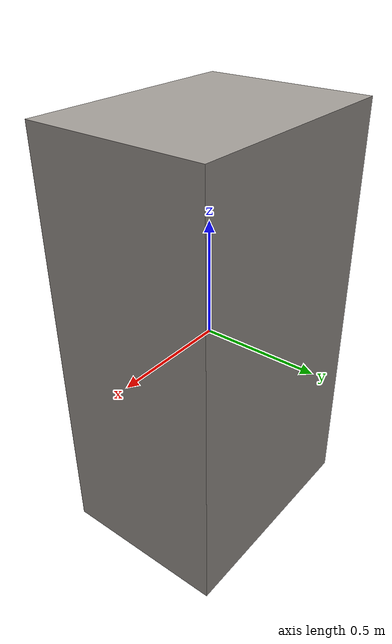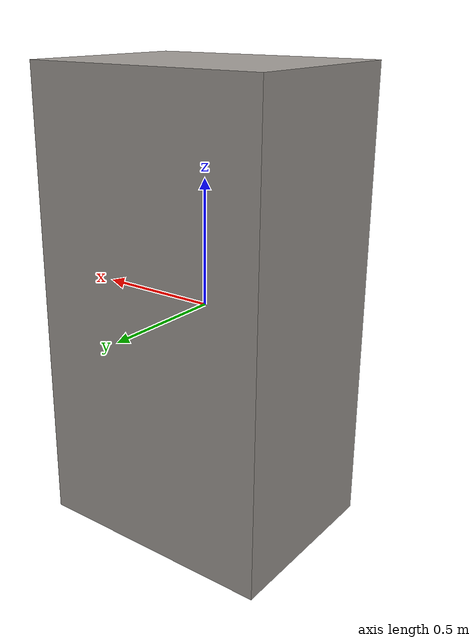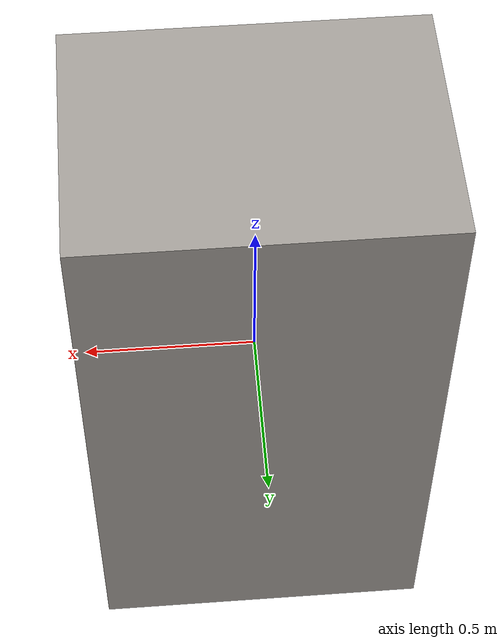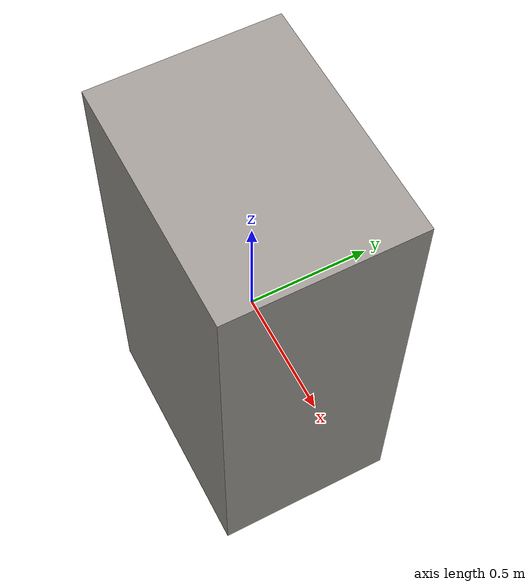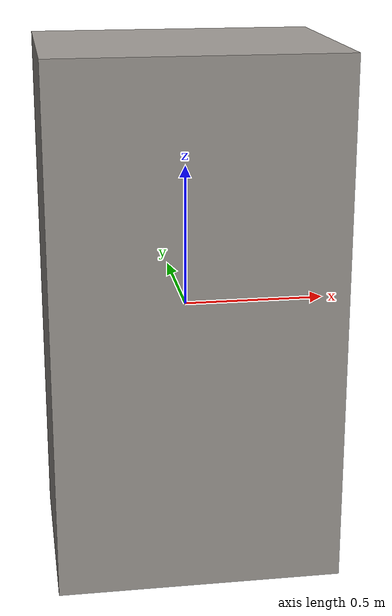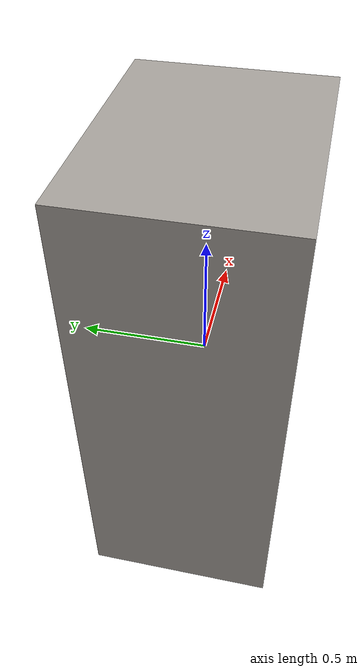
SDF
<?xml version="1.0"?>
<sdf version="1.6">
  <model name="VendingMachine">
    <static>true</static>
    <link name="link">
      <collision name="col">
        <geometry>
          <box>
            <size>1.0 0.75 1.85</size>
          </box>
        </geometry>
      </collision>
      <visual name="vis">
        <geometry>
          <box>
            <size>1.0 0.75 1.85</size>
          </box>
        </geometry>
        <material>
          <ambient>0.62 0.6 0.58 1</ambient>
          <diffuse>0.62 0.6 0.58 1</diffuse>
        </material>
      </visual>
    </link>
  </model>
</sdf>
